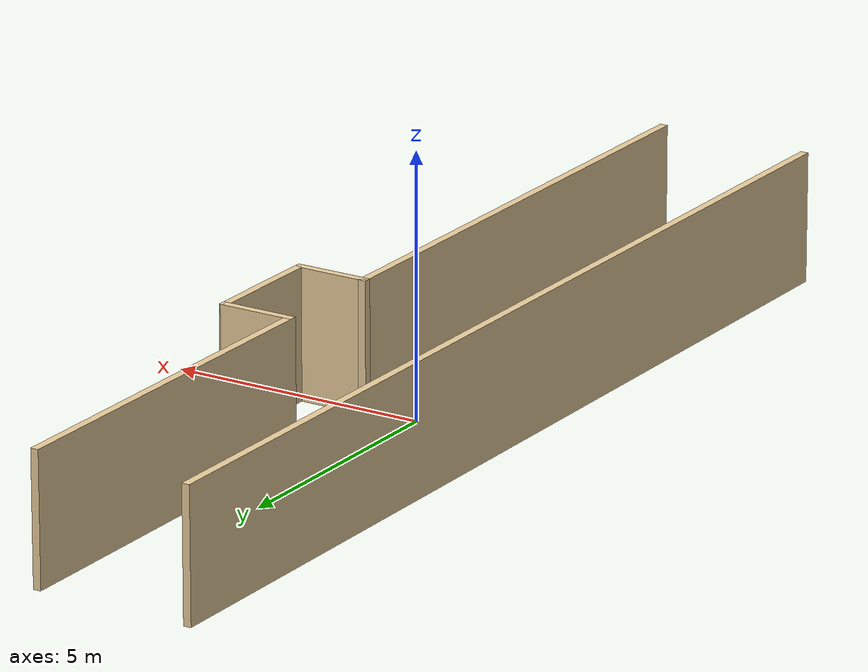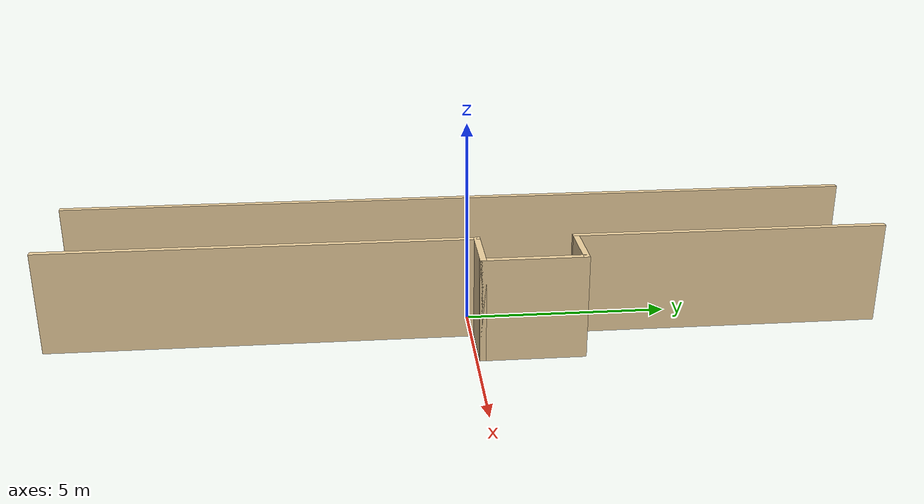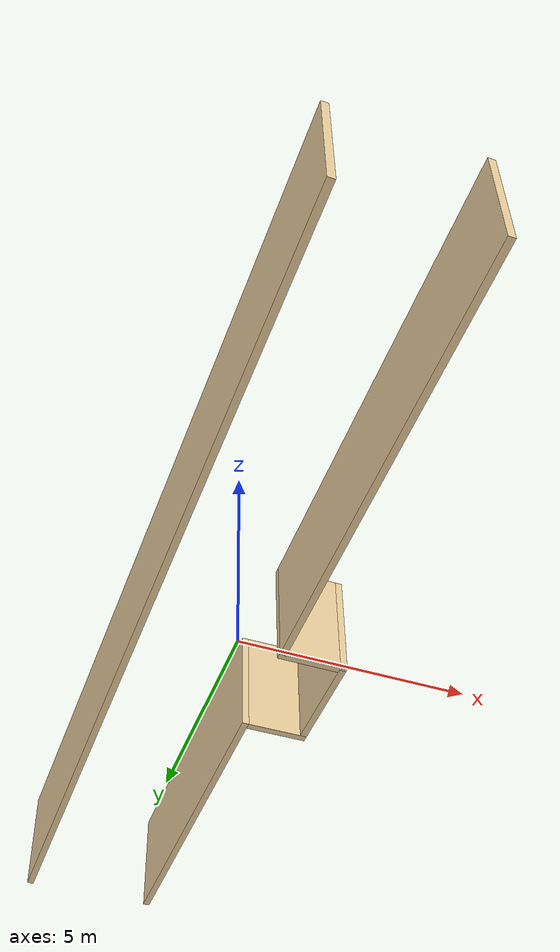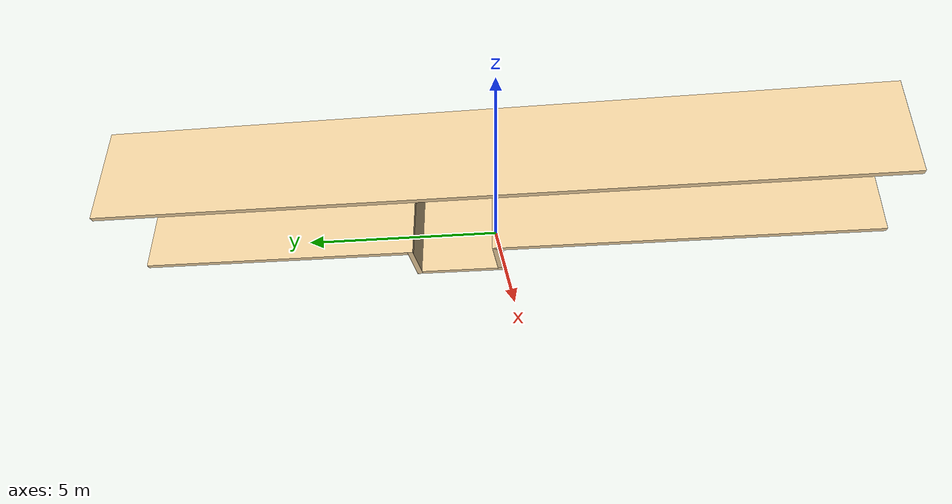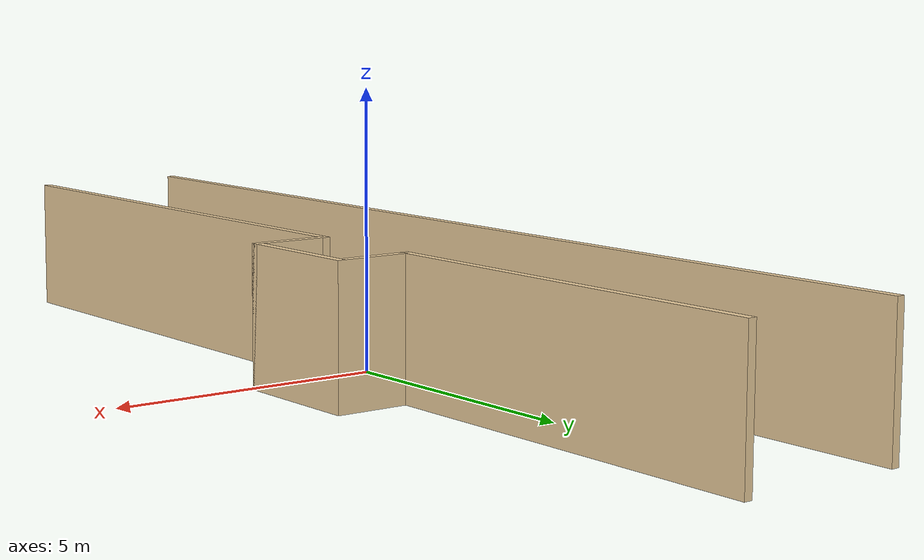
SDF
<?xml version='1.0'?>
<sdf version='1.6'>
  <model name='hallway_project'>
    <pose frame=''>0.168637 0 0 0 -0 0</pose>
    <link name='Wall_0'>
      <collision name='Wall_0_Collision'>
        <geometry>
          <box>
            <size>20.15 0.15 2.5</size>
          </box>
        </geometry>
        <pose frame=''>0 0 1.25 0 -0 0</pose>
      </collision>
      <visual name='Wall_0_Visual'>
        <pose frame=''>0 0 1.25 0 -0 0</pose>
        <geometry>
          <box>
            <size>20.15 0.15 2.5</size>
          </box>
        </geometry>
        <material>
          <script>
            <uri>file://media/materials/scripts/gazebo.material</uri>
            <name>Gazebo/Grey</name>
          </script>
          <ambient>0.921569 0.807843 0.615686 1</ambient>
        </material>
        <meta>
          <layer>0</layer>
        </meta>
      </visual>
      <pose frame=''>-2.16864 0 0 0 -0 1.5708</pose>
    </link>
    <link name='Wall_4'>
      <collision name='Wall_4_Collision'>
        <geometry>
          <box>
            <size>7.662 0.15 2.5</size>
          </box>
        </geometry>
        <pose frame=''>0 0 1.25 0 -0 0</pose>
      </collision>
      <visual name='Wall_4_Visual'>
        <pose frame=''>0 0 1.25 0 -0 0</pose>
        <geometry>
          <box>
            <size>7.662 0.15 2.5</size>
          </box>
        </geometry>
        <material>
          <script>
            <uri>file://media/materials/scripts/gazebo.material</uri>
            <name>Gazebo/Grey</name>
          </script>
          <ambient>0.921569 0.807843 0.615686 1</ambient>
        </material>
        <meta>
          <layer>0</layer>
        </meta>
      </visual>
      <pose frame=''>0.831363 6.244 0 0 -0 -1.5708</pose>
    </link>
    <link name='Wall_5'>
      <collision name='Wall_5_Collision'>
        <geometry>
          <box>
            <size>1.48727 0.15 2.5</size>
          </box>
        </geometry>
        <pose frame=''>0 0 1.25 0 -0 0</pose>
      </collision>
      <visual name='Wall_5_Visual'>
        <pose frame=''>0 0 1.25 0 -0 0</pose>
        <geometry>
          <box>
            <size>1.48727 0.15 2.5</size>
          </box>
        </geometry>
        <material>
          <script>
            <uri>file://media/materials/scripts/gazebo.material</uri>
            <name>Gazebo/Grey</name>
          </script>
          <ambient>0.921569 0.807843 0.615686 1</ambient>
        </material>
        <meta>
          <layer>0</layer>
        </meta>
      </visual>
      <pose frame=''>1.5 2.488 0 0 -0 -8e-06</pose>
    </link>
    <link name='Wall_6'>
      <collision name='Wall_6_Collision'>
        <geometry>
          <box>
            <size>2.5 0.15 2.5</size>
          </box>
        </geometry>
        <pose frame=''>0 0 1.25 0 -0 0</pose>
      </collision>
      <visual name='Wall_6_Visual'>
        <pose frame=''>0 0 1.25 0 -0 0</pose>
        <geometry>
          <box>
            <size>2.5 0.15 2.5</size>
          </box>
        </geometry>
        <material>
          <script>
            <uri>file://media/materials/scripts/gazebo.material</uri>
            <name>Gazebo/Grey</name>
          </script>
          <ambient>0.921569 0.807843 0.615686 1</ambient>
        </material>
        <meta>
          <layer>0</layer>
        </meta>
      </visual>
      <pose frame=''>2.16864 1.31299 0 0 -0 -1.5708</pose>
    </link>
    <link name='Wall_7'>
      <collision name='Wall_7_Collision'>
        <geometry>
          <box>
            <size>1.48727 0.15 2.5</size>
          </box>
        </geometry>
        <pose frame=''>0 0 1.25 0 -0 0</pose>
      </collision>
      <visual name='Wall_7_Visual'>
        <pose frame=''>0 0 1.25 0 -0 0</pose>
        <geometry>
          <box>
            <size>1.48727 0.15 2.5</size>
          </box>
        </geometry>
        <material>
          <script>
            <uri>file://media/materials/scripts/gazebo.material</uri>
            <name>Gazebo/Grey</name>
          </script>
          <ambient>0.921569 0.807843 0.615686 1</ambient>
        </material>
        <meta>
          <layer>0</layer>
        </meta>
      </visual>
      <pose frame=''>1.5 0.137995 0 0 -0 3.14159</pose>
    </link>
    <link name='Wall_8'>
      <collision name='Wall_8_Collision'>
        <geometry>
          <box>
            <size>10.288 0.15 2.5</size>
          </box>
        </geometry>
        <pose frame=''>0 0 1.25 0 -0 0</pose>
      </collision>
      <visual name='Wall_8_Visual'>
        <pose frame=''>0 0 1.25 0 -0 0</pose>
        <geometry>
          <box>
            <size>10.288 0.15 2.5</size>
          </box>
        </geometry>
        <material>
          <script>
            <uri>file://media/materials/scripts/gazebo.material</uri>
            <name>Gazebo/Grey</name>
          </script>
          <ambient>0.921569 0.807843 0.615686 1</ambient>
        </material>
        <meta>
          <layer>0</layer>
        </meta>
      </visual>
      <pose frame=''>0.831363 -4.931 0 0 -0 -1.5708</pose>
    </link>
    <static>1</static>
  </model>
</sdf>
